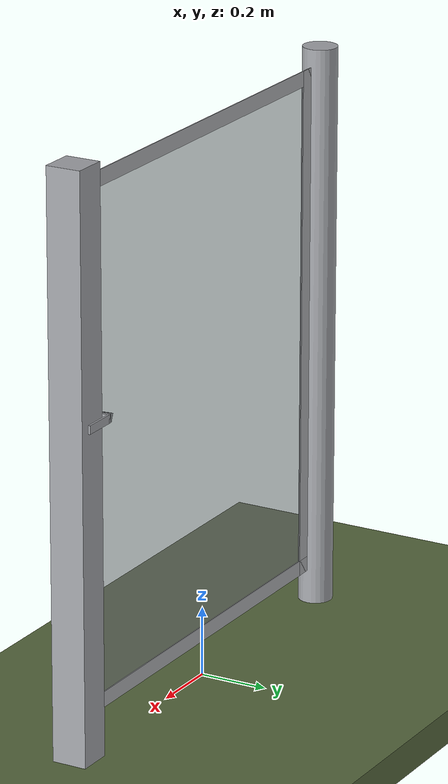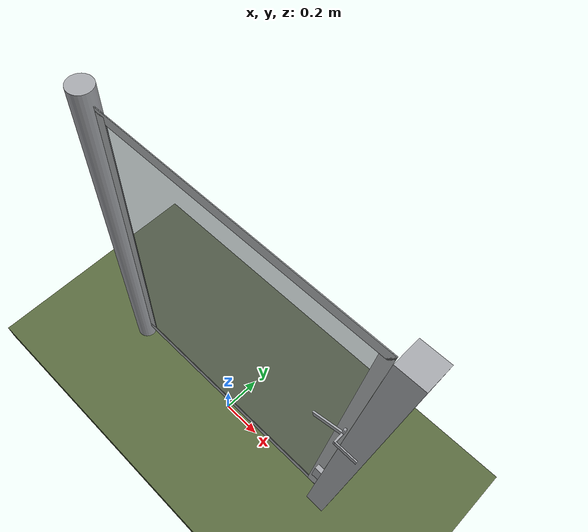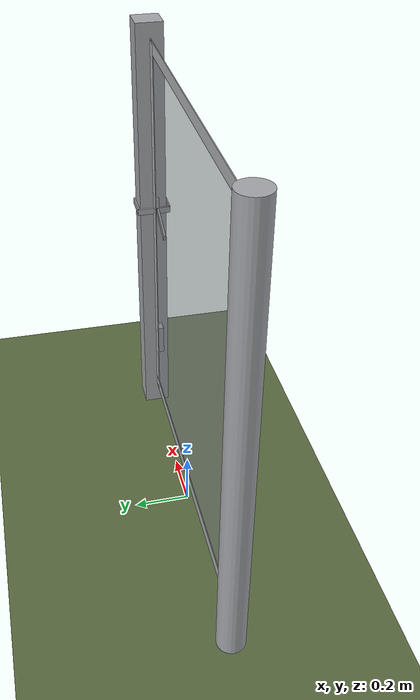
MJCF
<?xml version="1.0" ?>
<mujoco model="db0106_gate_swing_minimal">
  <compiler angle="radian" meshdir="../../hardware" texturedir="../../textures" autolimits="true" inertiafromgeom="false"/>
  <option timestep="0.002" integrator="implicitfast" cone="elliptic" impratio="10" noslip_iterations="3">
    <flag multiccd="enable"/>
  </option>
  <size memory="16M"/>
  <default>
    <geom condim="4" solref="0.005 1" solimp="0.95 0.99 0.001"/>
    <joint solreflimit="0.005 1" solimplimit="0.95 0.99 0.001"/>
    <tendon solreflimit="0.005 1"/>
    <equality solref="0.002 1"/>
  </default>
  <visual>
    <headlight ambient="0.4 0.4 0.4" diffuse="0.7 0.7 0.7" specular="0.2 0.2 0.2"/>
    <quality shadowsize="4096"/>
    <map znear="0.01" zfar="60"/>
  </visual>
  <asset>
    <material name="mat_floor" rgba="0.35 0.42 0.25 1" specular="0.2" shininess="0.15" reflectance="0"/>
    <material name="mat_wall" rgba="0.78 0.76 0.7 1" specular="0.2" shininess="0.1" reflectance="0"/>
    <material name="mat_leaf" rgba="0.7 0.71 0.72 1" specular="0.74" shininess="0.5" reflectance="0.36"/>
    <material name="mat_mesh_infill" rgba="0.6 0.62 0.64 0.55" specular="0.68" shininess="0.3" reflectance="0.1"/>
    <material name="mat_hinge" rgba="0.65 0.66 0.68 1" specular="0.74" shininess="0.5" reflectance="0.36"/>
    <material name="mat_op_steel_galvanized" rgba="0.65 0.66 0.68 1" specular="0.74" shininess="0.5" reflectance="0.36"/>
    <material name="mat_frame" rgba="0.65 0.66 0.68 1" specular="0.74" shininess="0.5" reflectance="0.36"/>
    <material name="mat_fence_mesh" rgba="0.6 0.62 0.64 0.5" specular="0.68" shininess="0.3" reflectance="0.1"/>
    <texture name="skybox" type="skybox" builtin="gradient" rgb1="0.6 0.7 0.85" rgb2="0.9 0.92 0.95" width="256" height="256"/>
  </asset>
  <worldbody>
    <light name="sun" pos="1.5 -2.5 4" dir="-0.3 0.5 -0.8" directional="true" diffuse="0.8 0.8 0.8" specular="0.3 0.3 0.3" castshadow="true"/>
    <light name="fill" pos="-1.5 2.5 3" dir="0.3 -0.5 -0.7" directional="true" diffuse="0.35 0.35 0.4" castshadow="false"/>
    <camera name="robot_view" pos="0 -2.05 1.334" xyaxes="1 0 0 0 0.26963 0.962964" fovy="52"/>
    <camera name="far_view" pos="0 2.05 1.334" xyaxes="-1 0 0 0 -0.26963 0.962964" fovy="52"/>
    <camera name="iso" pos="1.558 -1.722 1.662" xyaxes="0.741536 0.670913 0 -0.242917 0.268487 0.932151" fovy="46"/>
    <camera name="detail_handle" pos="0.766 -0.8135 1.285" xyaxes="0.97561 0.219512 0 -0.070934 0.315262 0.94635" fovy="38"/>
    <geom name="floor" type="box" size="6 6 0.05" pos="0 0 -0.05" material="mat_floor" group="0" contype="1" conaffinity="1" friction="0.8 0.005 0.0001" density="2400"/>
    <geom name="post_hinge" type="cylinder" size="0.05 0.825" pos="-0.656 0 0.825" material="mat_frame" group="0" contype="1" conaffinity="1" friction="0.6 0.005 0.0001" density="800"/>
    <geom name="post_latch" type="box" size="0.05 0.05 0.825" pos="0.656 0 0.825" material="mat_frame" group="0" contype="1" conaffinity="1" friction="0.6 0.005 0.0001" density="800"/>
    <geom name="gate_stop" type="box" size="0.02 0.012 0.06" pos="0.586 -0.0135 0.35" material="mat_frame" group="0" contype="1" conaffinity="1" friction="0.6 0.005 0.0001" density="800"/>
    <site name="approach_point" pos="0 -1.5 0" quat="1 0 0 0" size="0.05" rgba="0.2 0.9 0.2 0.5" group="4"/>
    <site name="goal_point" pos="0 1.5 0" quat="1 0 0 0" size="0.05" rgba="0.2 0.9 0.2 0.5" group="4"/>
    <site name="door_plane_center" pos="0 0 0.76" quat="1 0 0 0" size="0.02" rgba="0.2 0.9 0.2 0.5" group="4"/>
    <body name="leaf" pos="-0.606 0 0">
      <inertial pos="0.603 0 0.85" mass="5.963237" quat="-0.5 0.5 0.5 0.5" diaginertia="0.715600208 1.118123085 1.833714348"/>
      <joint name="leaf_hinge" type="hinge" axis="0 0 1" pos="0.003 0.05 0" limited="true" range="0 1.745329" damping="1.561738" frictionloss="3.348553" stiffness="5" springref="-0.870624" armature="0.02"/>
      <geom name="leaf_slab_col" type="box" size="0.6 0.0015 0.75" pos="0.603 0 0.85" material="mat_leaf" group="3" contype="1" conaffinity="1" rgba="0.8 0.3 0.3 0.25" friction="0.45 0.005 0.0001" density="1"/>
      <geom name="leaf_rail_b" type="box" size="0.6 0.0015 0.0225" pos="0.603 0 0.1225" material="mat_leaf" group="1" contype="0" conaffinity="0" density="1"/>
      <geom name="leaf_rail_t" type="box" size="0.6 0.0015 0.0225" pos="0.603 0 1.5775" material="mat_leaf" group="1" contype="0" conaffinity="0" density="1"/>
      <geom name="leaf_stile_h" type="box" size="0.0225 0.0015 0.75" pos="0.0255 0 0.85" material="mat_leaf" group="1" contype="0" conaffinity="0" density="1"/>
      <geom name="leaf_stile_l" type="box" size="0.0225 0.0015 0.75" pos="1.1805 0 0.85" material="mat_leaf" group="1" contype="0" conaffinity="0" density="1"/>
      <geom name="leaf_mesh" type="box" size="0.555 0.0015 0.705" pos="0.603 0 0.85" material="mat_mesh_infill" group="1" contype="0" conaffinity="0" density="1"/>
      <site name="leaf_edge_mid" pos="1.203 0 0.75" quat="1 0 0 0" size="0.02" rgba="0.2 0.9 0.2 0.5" group="4"/>
      <body name="leaf_fork" pos="1.063 0 0.9">
        <inertial pos="0.125752 -0.00506 0.043882" mass="0.210369" quat="0.989204 -0.014005 -0.117586 0.086326" diaginertia="0.000363386 0.000686547 0.000976724"/>
        <joint name="leaf_fork_hinge" type="hinge" axis="0 -1 0" limited="true" range="0 1.2" damping="0.037477" frictionloss="0.006367" armature="0.0001"/>
        <geom name="leaf_fork_arm" type="box" size="0.069176 0.004 0.012" pos="0.0645 -0.0135 0.025" quat="0.982958 0 -0.183833 0" material="mat_op_steel_galvanized" group="0" contype="1" conaffinity="1" friction="0.6 0.005 0.0001" density="2500"/>
        <geom name="leaf_fork_tine_n" type="box" size="0.05 0.003 0.012" pos="0.179 -0.059 0.05" material="mat_op_steel_galvanized" group="0" contype="1" conaffinity="1" friction="0.6 0.005 0.0001" density="2500"/>
        <geom name="leaf_fork_tine_p" type="box" size="0.05 0.003 0.012" pos="0.179 0.059 0.05" material="mat_op_steel_galvanized" group="0" contype="1" conaffinity="1" friction="0.6 0.005 0.0001" density="2500"/>
        <geom name="leaf_fork_bridge" type="box" size="0.004 0.062 0.012" pos="0.129 0 0.05" material="mat_op_steel_galvanized" group="0" contype="1" conaffinity="1" friction="0.6 0.005 0.0001" density="2500"/>
        <geom name="leaf_fork_handle" type="capsule" size="0.006 0.018" pos="0.129 -0.0135 0.08" material="mat_op_steel_galvanized" group="0" contype="1" conaffinity="1" friction="0.7 0.01 0.0001" density="2500"/>
        <site name="leaf_fork_grip" pos="0.129 -0.0135 0.105" quat="1 0 0 0" size="0.012" rgba="0.2 0.9 0.2 0.5" group="4"/>
      </body>
    </body>
  </worldbody>
  <sensor>
    <jointpos name="leaf_hinge_pos" joint="leaf_hinge"/>
    <jointvel name="leaf_hinge_vel" joint="leaf_hinge"/>
    <jointpos name="leaf_fork_hinge_pos" joint="leaf_fork_hinge"/>
    <jointvel name="leaf_fork_hinge_vel" joint="leaf_fork_hinge"/>
  </sensor>
</mujoco>
